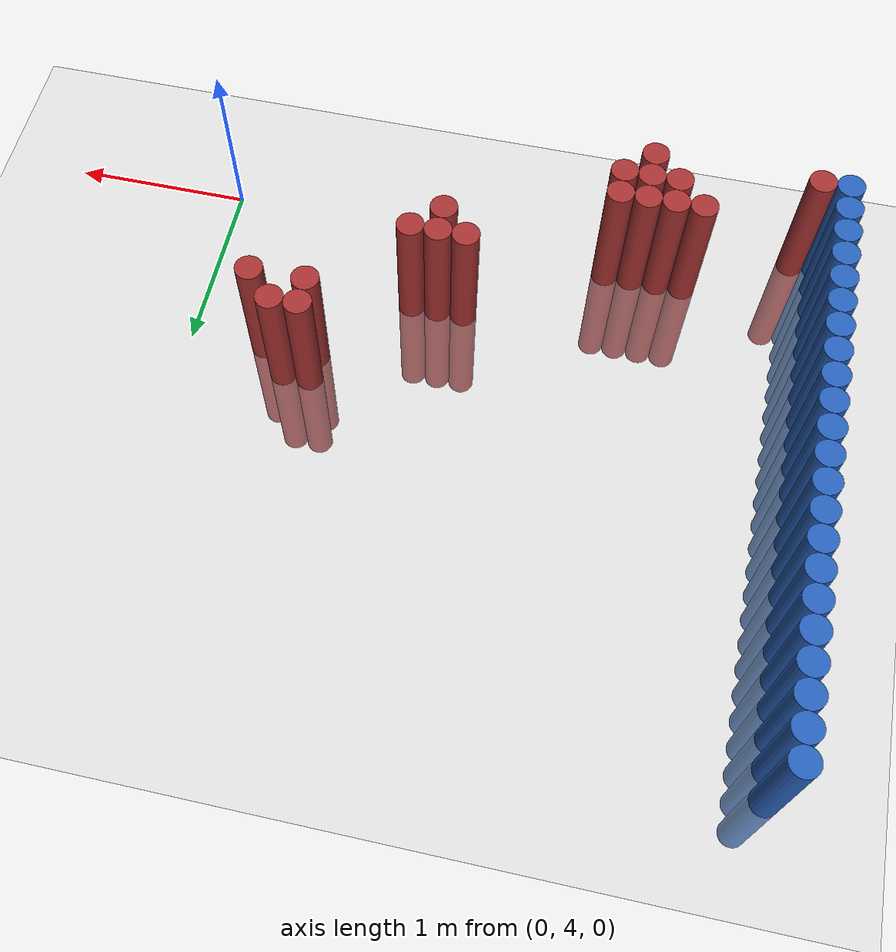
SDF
<sdf version="1.6">
 <world name="default">
  <model name="ground_plane">
   <static>1</static>
   <link name="link">
    <collision name="collision">
     <geometry><plane><normal>0 0 1</normal><size>100 100</size></plane></geometry>
     <surface><friction><ode><mu>100</mu><mu2>50</mu2></ode></friction></surface>
    </collision>
    <visual name="visual">
     <cast_shadows>0</cast_shadows>
     <geometry><plane><normal>0 0 1</normal><size>100 100</size></plane></geometry>
     <material>
      <script><uri>file://media/materials/scripts/gazebo.material</uri><name>Gazebo/Grey</name></script>
     </material>
    </visual>
   </link>
  </model>
  <model name="unit_cylinder_165">
   <static>1</static>
   <pose>-3.425000 3.775000 0.000000 0.000000 0.000000 0.000000</pose>
   <link name="link">
    <inertial>
     <mass>1</mass>
     <inertia><ixx>0.145833</ixx><ixy>0</ixy><ixz>0</ixz><iyy>0.145833</iyy><iyz>0</iyz><izz>0.125</izz></inertia>
    </inertial>
    <collision name="collision">
     <geometry><cylinder><radius>0.075000</radius><length>1.5</length></cylinder></geometry>
    </collision>
    <visual name="visual">
     <geometry><cylinder><radius>0.075000</radius><length>1.5</length></cylinder></geometry>
     <material>
      <ambient>0.152000 0.379000 0.720000 1</ambient>
      <diffuse>0.152000 0.379000 0.720000 1</diffuse>
     </material>
     <material>
      <script><name>Gazebo/Grey</name><uri>file://media/materials/scripts/gazebo.material</uri></script>
     </material>
    </visual>
   </link>
  </model>
  <model name="unit_cylinder_167">
   <static>1</static>
   <pose>-3.425000 3.925000 0.000000 0.000000 0.000000 0.000000</pose>
   <link name="link">
    <inertial>
     <mass>1</mass>
     <inertia><ixx>0.145833</ixx><ixy>0</ixy><ixz>0</ixz><iyy>0.145833</iyy><iyz>0</iyz><izz>0.125</izz></inertia>
    </inertial>
    <collision name="collision">
     <geometry><cylinder><radius>0.075000</radius><length>1.5</length></cylinder></geometry>
    </collision>
    <visual name="visual">
     <geometry><cylinder><radius>0.075000</radius><length>1.5</length></cylinder></geometry>
     <material>
      <ambient>0.152000 0.379000 0.720000 1</ambient>
      <diffuse>0.152000 0.379000 0.720000 1</diffuse>
     </material>
     <material>
      <script><name>Gazebo/Grey</name><uri>file://media/materials/scripts/gazebo.material</uri></script>
     </material>
    </visual>
   </link>
  </model>
  <model name="unit_cylinder_169">
   <static>1</static>
   <pose>-3.425000 4.075000 0.000000 0.000000 0.000000 0.000000</pose>
   <link name="link">
    <inertial>
     <mass>1</mass>
     <inertia><ixx>0.145833</ixx><ixy>0</ixy><ixz>0</ixz><iyy>0.145833</iyy><iyz>0</iyz><izz>0.125</izz></inertia>
    </inertial>
    <collision name="collision">
     <geometry><cylinder><radius>0.075000</radius><length>1.5</length></cylinder></geometry>
    </collision>
    <visual name="visual">
     <geometry><cylinder><radius>0.075000</radius><length>1.5</length></cylinder></geometry>
     <material>
      <ambient>0.152000 0.379000 0.720000 1</ambient>
      <diffuse>0.152000 0.379000 0.720000 1</diffuse>
     </material>
     <material>
      <script><name>Gazebo/Grey</name><uri>file://media/materials/scripts/gazebo.material</uri></script>
     </material>
    </visual>
   </link>
  </model>
  <model name="unit_cylinder_171">
   <static>1</static>
   <pose>-3.425000 4.225000 0.000000 0.000000 0.000000 0.000000</pose>
   <link name="link">
    <inertial>
     <mass>1</mass>
     <inertia><ixx>0.145833</ixx><ixy>0</ixy><ixz>0</ixz><iyy>0.145833</iyy><iyz>0</iyz><izz>0.125</izz></inertia>
    </inertial>
    <collision name="collision">
     <geometry><cylinder><radius>0.075000</radius><length>1.5</length></cylinder></geometry>
    </collision>
    <visual name="visual">
     <geometry><cylinder><radius>0.075000</radius><length>1.5</length></cylinder></geometry>
     <material>
      <ambient>0.152000 0.379000 0.720000 1</ambient>
      <diffuse>0.152000 0.379000 0.720000 1</diffuse>
     </material>
     <material>
      <script><name>Gazebo/Grey</name><uri>file://media/materials/scripts/gazebo.material</uri></script>
     </material>
    </visual>
   </link>
  </model>
  <model name="unit_cylinder_173">
   <static>1</static>
   <pose>-3.425000 4.375000 0.000000 0.000000 0.000000 0.000000</pose>
   <link name="link">
    <inertial>
     <mass>1</mass>
     <inertia><ixx>0.145833</ixx><ixy>0</ixy><ixz>0</ixz><iyy>0.145833</iyy><iyz>0</iyz><izz>0.125</izz></inertia>
    </inertial>
    <collision name="collision">
     <geometry><cylinder><radius>0.075000</radius><length>1.5</length></cylinder></geometry>
    </collision>
    <visual name="visual">
     <geometry><cylinder><radius>0.075000</radius><length>1.5</length></cylinder></geometry>
     <material>
      <ambient>0.152000 0.379000 0.720000 1</ambient>
      <diffuse>0.152000 0.379000 0.720000 1</diffuse>
     </material>
     <material>
      <script><name>Gazebo/Grey</name><uri>file://media/materials/scripts/gazebo.material</uri></script>
     </material>
    </visual>
   </link>
  </model>
  <model name="unit_cylinder_175">
   <static>1</static>
   <pose>-3.425000 4.525000 0.000000 0.000000 0.000000 0.000000</pose>
   <link name="link">
    <inertial>
     <mass>1</mass>
     <inertia><ixx>0.145833</ixx><ixy>0</ixy><ixz>0</ixz><iyy>0.145833</iyy><iyz>0</iyz><izz>0.125</izz></inertia>
    </inertial>
    <collision name="collision">
     <geometry><cylinder><radius>0.075000</radius><length>1.5</length></cylinder></geometry>
    </collision>
    <visual name="visual">
     <geometry><cylinder><radius>0.075000</radius><length>1.5</length></cylinder></geometry>
     <material>
      <ambient>0.152000 0.379000 0.720000 1</ambient>
      <diffuse>0.152000 0.379000 0.720000 1</diffuse>
     </material>
     <material>
      <script><name>Gazebo/Grey</name><uri>file://media/materials/scripts/gazebo.material</uri></script>
     </material>
    </visual>
   </link>
  </model>
  <model name="unit_cylinder_177">
   <static>1</static>
   <pose>-3.425000 4.675000 0.000000 0.000000 0.000000 0.000000</pose>
   <link name="link">
    <inertial>
     <mass>1</mass>
     <inertia><ixx>0.145833</ixx><ixy>0</ixy><ixz>0</ixz><iyy>0.145833</iyy><iyz>0</iyz><izz>0.125</izz></inertia>
    </inertial>
    <collision name="collision">
     <geometry><cylinder><radius>0.075000</radius><length>1.5</length></cylinder></geometry>
    </collision>
    <visual name="visual">
     <geometry><cylinder><radius>0.075000</radius><length>1.5</length></cylinder></geometry>
     <material>
      <ambient>0.152000 0.379000 0.720000 1</ambient>
      <diffuse>0.152000 0.379000 0.720000 1</diffuse>
     </material>
     <material>
      <script><name>Gazebo/Grey</name><uri>file://media/materials/scripts/gazebo.material</uri></script>
     </material>
    </visual>
   </link>
  </model>
  <model name="unit_cylinder_179">
   <static>1</static>
   <pose>-3.425000 4.825000 0.000000 0.000000 0.000000 0.000000</pose>
   <link name="link">
    <inertial>
     <mass>1</mass>
     <inertia><ixx>0.145833</ixx><ixy>0</ixy><ixz>0</ixz><iyy>0.145833</iyy><iyz>0</iyz><izz>0.125</izz></inertia>
    </inertial>
    <collision name="collision">
     <geometry><cylinder><radius>0.075000</radius><length>1.5</length></cylinder></geometry>
    </collision>
    <visual name="visual">
     <geometry><cylinder><radius>0.075000</radius><length>1.5</length></cylinder></geometry>
     <material>
      <ambient>0.152000 0.379000 0.720000 1</ambient>
      <diffuse>0.152000 0.379000 0.720000 1</diffuse>
     </material>
     <material>
      <script><name>Gazebo/Grey</name><uri>file://media/materials/scripts/gazebo.material</uri></script>
     </material>
    </visual>
   </link>
  </model>
  <model name="unit_cylinder_181">
   <static>1</static>
   <pose>-3.425000 4.975000 0.000000 0.000000 0.000000 0.000000</pose>
   <link name="link">
    <inertial>
     <mass>1</mass>
     <inertia><ixx>0.145833</ixx><ixy>0</ixy><ixz>0</ixz><iyy>0.145833</iyy><iyz>0</iyz><izz>0.125</izz></inertia>
    </inertial>
    <collision name="collision">
     <geometry><cylinder><radius>0.075000</radius><length>1.5</length></cylinder></geometry>
    </collision>
    <visual name="visual">
     <geometry><cylinder><radius>0.075000</radius><length>1.5</length></cylinder></geometry>
     <material>
      <ambient>0.152000 0.379000 0.720000 1</ambient>
      <diffuse>0.152000 0.379000 0.720000 1</diffuse>
     </material>
     <material>
      <script><name>Gazebo/Grey</name><uri>file://media/materials/scripts/gazebo.material</uri></script>
     </material>
    </visual>
   </link>
  </model>
  <model name="unit_cylinder_183">
   <static>1</static>
   <pose>-3.425000 5.125000 0.000000 0.000000 0.000000 0.000000</pose>
   <link name="link">
    <inertial>
     <mass>1</mass>
     <inertia><ixx>0.145833</ixx><ixy>0</ixy><ixz>0</ixz><iyy>0.145833</iyy><iyz>0</iyz><izz>0.125</izz></inertia>
    </inertial>
    <collision name="collision">
     <geometry><cylinder><radius>0.075000</radius><length>1.5</length></cylinder></geometry>
    </collision>
    <visual name="visual">
     <geometry><cylinder><radius>0.075000</radius><length>1.5</length></cylinder></geometry>
     <material>
      <ambient>0.152000 0.379000 0.720000 1</ambient>
      <diffuse>0.152000 0.379000 0.720000 1</diffuse>
     </material>
     <material>
      <script><name>Gazebo/Grey</name><uri>file://media/materials/scripts/gazebo.material</uri></script>
     </material>
    </visual>
   </link>
  </model>
  <model name="unit_cylinder_185">
   <static>1</static>
   <pose>-3.425000 5.275000 0.000000 0.000000 0.000000 0.000000</pose>
   <link name="link">
    <inertial>
     <mass>1</mass>
     <inertia><ixx>0.145833</ixx><ixy>0</ixy><ixz>0</ixz><iyy>0.145833</iyy><iyz>0</iyz><izz>0.125</izz></inertia>
    </inertial>
    <collision name="collision">
     <geometry><cylinder><radius>0.075000</radius><length>1.5</length></cylinder></geometry>
    </collision>
    <visual name="visual">
     <geometry><cylinder><radius>0.075000</radius><length>1.5</length></cylinder></geometry>
     <material>
      <ambient>0.152000 0.379000 0.720000 1</ambient>
      <diffuse>0.152000 0.379000 0.720000 1</diffuse>
     </material>
     <material>
      <script><name>Gazebo/Grey</name><uri>file://media/materials/scripts/gazebo.material</uri></script>
     </material>
    </visual>
   </link>
  </model>
  <model name="unit_cylinder_187">
   <static>1</static>
   <pose>-3.425000 5.425000 0.000000 0.000000 0.000000 0.000000</pose>
   <link name="link">
    <inertial>
     <mass>1</mass>
     <inertia><ixx>0.145833</ixx><ixy>0</ixy><ixz>0</ixz><iyy>0.145833</iyy><iyz>0</iyz><izz>0.125</izz></inertia>
    </inertial>
    <collision name="collision">
     <geometry><cylinder><radius>0.075000</radius><length>1.5</length></cylinder></geometry>
    </collision>
    <visual name="visual">
     <geometry><cylinder><radius>0.075000</radius><length>1.5</length></cylinder></geometry>
     <material>
      <ambient>0.152000 0.379000 0.720000 1</ambient>
      <diffuse>0.152000 0.379000 0.720000 1</diffuse>
     </material>
     <material>
      <script><name>Gazebo/Grey</name><uri>file://media/materials/scripts/gazebo.material</uri></script>
     </material>
    </visual>
   </link>
  </model>
  <model name="unit_cylinder_189">
   <static>1</static>
   <pose>-3.425000 5.575000 0.000000 0.000000 0.000000 0.000000</pose>
   <link name="link">
    <inertial>
     <mass>1</mass>
     <inertia><ixx>0.145833</ixx><ixy>0</ixy><ixz>0</ixz><iyy>0.145833</iyy><iyz>0</iyz><izz>0.125</izz></inertia>
    </inertial>
    <collision name="collision">
     <geometry><cylinder><radius>0.075000</radius><length>1.5</length></cylinder></geometry>
    </collision>
    <visual name="visual">
     <geometry><cylinder><radius>0.075000</radius><length>1.5</length></cylinder></geometry>
     <material>
      <ambient>0.152000 0.379000 0.720000 1</ambient>
      <diffuse>0.152000 0.379000 0.720000 1</diffuse>
     </material>
     <material>
      <script><name>Gazebo/Grey</name><uri>file://media/materials/scripts/gazebo.material</uri></script>
     </material>
    </visual>
   </link>
  </model>
  <model name="unit_cylinder_191">
   <static>1</static>
   <pose>-3.425000 5.725000 0.000000 0.000000 0.000000 0.000000</pose>
   <link name="link">
    <inertial>
     <mass>1</mass>
     <inertia><ixx>0.145833</ixx><ixy>0</ixy><ixz>0</ixz><iyy>0.145833</iyy><iyz>0</iyz><izz>0.125</izz></inertia>
    </inertial>
    <collision name="collision">
     <geometry><cylinder><radius>0.075000</radius><length>1.5</length></cylinder></geometry>
    </collision>
    <visual name="visual">
     <geometry><cylinder><radius>0.075000</radius><length>1.5</length></cylinder></geometry>
     <material>
      <ambient>0.152000 0.379000 0.720000 1</ambient>
      <diffuse>0.152000 0.379000 0.720000 1</diffuse>
     </material>
     <material>
      <script><name>Gazebo/Grey</name><uri>file://media/materials/scripts/gazebo.material</uri></script>
     </material>
    </visual>
   </link>
  </model>
  <model name="unit_cylinder_193">
   <static>1</static>
   <pose>-3.425000 5.875000 0.000000 0.000000 0.000000 0.000000</pose>
   <link name="link">
    <inertial>
     <mass>1</mass>
     <inertia><ixx>0.145833</ixx><ixy>0</ixy><ixz>0</ixz><iyy>0.145833</iyy><iyz>0</iyz><izz>0.125</izz></inertia>
    </inertial>
    <collision name="collision">
     <geometry><cylinder><radius>0.075000</radius><length>1.5</length></cylinder></geometry>
    </collision>
    <visual name="visual">
     <geometry><cylinder><radius>0.075000</radius><length>1.5</length></cylinder></geometry>
     <material>
      <ambient>0.152000 0.379000 0.720000 1</ambient>
      <diffuse>0.152000 0.379000 0.720000 1</diffuse>
     </material>
     <material>
      <script><name>Gazebo/Grey</name><uri>file://media/materials/scripts/gazebo.material</uri></script>
     </material>
    </visual>
   </link>
  </model>
  <model name="unit_cylinder_195">
   <static>1</static>
   <pose>-3.425000 6.025000 0.000000 0.000000 0.000000 0.000000</pose>
   <link name="link">
    <inertial>
     <mass>1</mass>
     <inertia><ixx>0.145833</ixx><ixy>0</ixy><ixz>0</ixz><iyy>0.145833</iyy><iyz>0</iyz><izz>0.125</izz></inertia>
    </inertial>
    <collision name="collision">
     <geometry><cylinder><radius>0.075000</radius><length>1.5</length></cylinder></geometry>
    </collision>
    <visual name="visual">
     <geometry><cylinder><radius>0.075000</radius><length>1.5</length></cylinder></geometry>
     <material>
      <ambient>0.152000 0.379000 0.720000 1</ambient>
      <diffuse>0.152000 0.379000 0.720000 1</diffuse>
     </material>
     <material>
      <script><name>Gazebo/Grey</name><uri>file://media/materials/scripts/gazebo.material</uri></script>
     </material>
    </visual>
   </link>
  </model>
  <model name="unit_cylinder_197">
   <static>1</static>
   <pose>-3.425000 6.175000 0.000000 0.000000 0.000000 0.000000</pose>
   <link name="link">
    <inertial>
     <mass>1</mass>
     <inertia><ixx>0.145833</ixx><ixy>0</ixy><ixz>0</ixz><iyy>0.145833</iyy><iyz>0</iyz><izz>0.125</izz></inertia>
    </inertial>
    <collision name="collision">
     <geometry><cylinder><radius>0.075000</radius><length>1.5</length></cylinder></geometry>
    </collision>
    <visual name="visual">
     <geometry><cylinder><radius>0.075000</radius><length>1.5</length></cylinder></geometry>
     <material>
      <ambient>0.152000 0.379000 0.720000 1</ambient>
      <diffuse>0.152000 0.379000 0.720000 1</diffuse>
     </material>
     <material>
      <script><name>Gazebo/Grey</name><uri>file://media/materials/scripts/gazebo.material</uri></script>
     </material>
    </visual>
   </link>
  </model>
  <model name="unit_cylinder_199">
   <static>1</static>
   <pose>-3.425000 6.325000 0.000000 0.000000 0.000000 0.000000</pose>
   <link name="link">
    <inertial>
     <mass>1</mass>
     <inertia><ixx>0.145833</ixx><ixy>0</ixy><ixz>0</ixz><iyy>0.145833</iyy><iyz>0</iyz><izz>0.125</izz></inertia>
    </inertial>
    <collision name="collision">
     <geometry><cylinder><radius>0.075000</radius><length>1.5</length></cylinder></geometry>
    </collision>
    <visual name="visual">
     <geometry><cylinder><radius>0.075000</radius><length>1.5</length></cylinder></geometry>
     <material>
      <ambient>0.152000 0.379000 0.720000 1</ambient>
      <diffuse>0.152000 0.379000 0.720000 1</diffuse>
     </material>
     <material>
      <script><name>Gazebo/Grey</name><uri>file://media/materials/scripts/gazebo.material</uri></script>
     </material>
    </visual>
   </link>
  </model>
  <model name="unit_cylinder_201">
   <static>1</static>
   <pose>-3.425000 6.475000 0.000000 0.000000 0.000000 0.000000</pose>
   <link name="link">
    <inertial>
     <mass>1</mass>
     <inertia><ixx>0.145833</ixx><ixy>0</ixy><ixz>0</ixz><iyy>0.145833</iyy><iyz>0</iyz><izz>0.125</izz></inertia>
    </inertial>
    <collision name="collision">
     <geometry><cylinder><radius>0.075000</radius><length>1.5</length></cylinder></geometry>
    </collision>
    <visual name="visual">
     <geometry><cylinder><radius>0.075000</radius><length>1.5</length></cylinder></geometry>
     <material>
      <ambient>0.152000 0.379000 0.720000 1</ambient>
      <diffuse>0.152000 0.379000 0.720000 1</diffuse>
     </material>
     <material>
      <script><name>Gazebo/Grey</name><uri>file://media/materials/scripts/gazebo.material</uri></script>
     </material>
    </visual>
   </link>
  </model>
  <model name="unit_cylinder_203">
   <static>1</static>
   <pose>-3.425000 6.625000 0.000000 0.000000 0.000000 0.000000</pose>
   <link name="link">
    <inertial>
     <mass>1</mass>
     <inertia><ixx>0.145833</ixx><ixy>0</ixy><ixz>0</ixz><iyy>0.145833</iyy><iyz>0</iyz><izz>0.125</izz></inertia>
    </inertial>
    <collision name="collision">
     <geometry><cylinder><radius>0.075000</radius><length>1.5</length></cylinder></geometry>
    </collision>
    <visual name="visual">
     <geometry><cylinder><radius>0.075000</radius><length>1.5</length></cylinder></geometry>
     <material>
      <ambient>0.152000 0.379000 0.720000 1</ambient>
      <diffuse>0.152000 0.379000 0.720000 1</diffuse>
     </material>
     <material>
      <script><name>Gazebo/Grey</name><uri>file://media/materials/scripts/gazebo.material</uri></script>
     </material>
    </visual>
   </link>
  </model>
  <model name="unit_cylinder_205">
   <static>1</static>
   <pose>-3.425000 6.775000 0.000000 0.000000 0.000000 0.000000</pose>
   <link name="link">
    <inertial>
     <mass>1</mass>
     <inertia><ixx>0.145833</ixx><ixy>0</ixy><ixz>0</ixz><iyy>0.145833</iyy><iyz>0</iyz><izz>0.125</izz></inertia>
    </inertial>
    <collision name="collision">
     <geometry><cylinder><radius>0.075000</radius><length>1.5</length></cylinder></geometry>
    </collision>
    <visual name="visual">
     <geometry><cylinder><radius>0.075000</radius><length>1.5</length></cylinder></geometry>
     <material>
      <ambient>0.152000 0.379000 0.720000 1</ambient>
      <diffuse>0.152000 0.379000 0.720000 1</diffuse>
     </material>
     <material>
      <script><name>Gazebo/Grey</name><uri>file://media/materials/scripts/gazebo.material</uri></script>
     </material>
    </visual>
   </link>
  </model>
  <model name="unit_cylinder_207">
   <static>1</static>
   <pose>-3.425000 6.925000 0.000000 0.000000 0.000000 0.000000</pose>
   <link name="link">
    <inertial>
     <mass>1</mass>
     <inertia><ixx>0.145833</ixx><ixy>0</ixy><ixz>0</ixz><iyy>0.145833</iyy><iyz>0</iyz><izz>0.125</izz></inertia>
    </inertial>
    <collision name="collision">
     <geometry><cylinder><radius>0.075000</radius><length>1.5</length></cylinder></geometry>
    </collision>
    <visual name="visual">
     <geometry><cylinder><radius>0.075000</radius><length>1.5</length></cylinder></geometry>
     <material>
      <ambient>0.152000 0.379000 0.720000 1</ambient>
      <diffuse>0.152000 0.379000 0.720000 1</diffuse>
     </material>
     <material>
      <script><name>Gazebo/Grey</name><uri>file://media/materials/scripts/gazebo.material</uri></script>
     </material>
    </visual>
   </link>
  </model>
  <model name="unit_cylinder_246">
   <static>1</static>
   <pose>-3.425000 3.775000 0.000000 0.000000 0.000000 0.000000</pose>
   <link name="link">
    <inertial>
     <mass>1</mass>
     <inertia><ixx>0.145833</ixx><ixy>0</ixy><ixz>0</ixz><iyy>0.145833</iyy><iyz>0</iyz><izz>0.125</izz></inertia>
    </inertial>
    <collision name="collision">
     <geometry><cylinder><radius>0.075000</radius><length>1.5</length></cylinder></geometry>
    </collision>
    <visual name="visual">
     <geometry><cylinder><radius>0.075000</radius><length>1.5</length></cylinder></geometry>
     <material>
      <ambient>0.152000 0.379000 0.720000 1</ambient>
      <diffuse>0.152000 0.379000 0.720000 1</diffuse>
     </material>
     <material>
      <script><name>Gazebo/Grey</name><uri>file://media/materials/scripts/gazebo.material</uri></script>
     </material>
    </visual>
   </link>
  </model>
  <model name="unit_cylinder_247">
   <static>1</static>
   <pose>-3.425000 3.925000 0.000000 0.000000 0.000000 0.000000</pose>
   <link name="link">
    <inertial>
     <mass>1</mass>
     <inertia><ixx>0.145833</ixx><ixy>0</ixy><ixz>0</ixz><iyy>0.145833</iyy><iyz>0</iyz><izz>0.125</izz></inertia>
    </inertial>
    <collision name="collision">
     <geometry><cylinder><radius>0.075000</radius><length>1.5</length></cylinder></geometry>
    </collision>
    <visual name="visual">
     <geometry><cylinder><radius>0.075000</radius><length>1.5</length></cylinder></geometry>
     <material>
      <ambient>0.152000 0.379000 0.720000 1</ambient>
      <diffuse>0.152000 0.379000 0.720000 1</diffuse>
     </material>
     <material>
      <script><name>Gazebo/Grey</name><uri>file://media/materials/scripts/gazebo.material</uri></script>
     </material>
    </visual>
   </link>
  </model>
  <model name="unit_cylinder_248">
   <static>1</static>
   <pose>-3.425000 4.075000 0.000000 0.000000 0.000000 0.000000</pose>
   <link name="link">
    <inertial>
     <mass>1</mass>
     <inertia><ixx>0.145833</ixx><ixy>0</ixy><ixz>0</ixz><iyy>0.145833</iyy><iyz>0</iyz><izz>0.125</izz></inertia>
    </inertial>
    <collision name="collision">
     <geometry><cylinder><radius>0.075000</radius><length>1.5</length></cylinder></geometry>
    </collision>
    <visual name="visual">
     <geometry><cylinder><radius>0.075000</radius><length>1.5</length></cylinder></geometry>
     <material>
      <ambient>0.152000 0.379000 0.720000 1</ambient>
      <diffuse>0.152000 0.379000 0.720000 1</diffuse>
     </material>
     <material>
      <script><name>Gazebo/Grey</name><uri>file://media/materials/scripts/gazebo.material</uri></script>
     </material>
    </visual>
   </link>
  </model>
  <model name="unit_cylinder_249">
   <static>1</static>
   <pose>-3.425000 4.225000 0.000000 0.000000 0.000000 0.000000</pose>
   <link name="link">
    <inertial>
     <mass>1</mass>
     <inertia><ixx>0.145833</ixx><ixy>0</ixy><ixz>0</ixz><iyy>0.145833</iyy><iyz>0</iyz><izz>0.125</izz></inertia>
    </inertial>
    <collision name="collision">
     <geometry><cylinder><radius>0.075000</radius><length>1.5</length></cylinder></geometry>
    </collision>
    <visual name="visual">
     <geometry><cylinder><radius>0.075000</radius><length>1.5</length></cylinder></geometry>
     <material>
      <ambient>0.152000 0.379000 0.720000 1</ambient>
      <diffuse>0.152000 0.379000 0.720000 1</diffuse>
     </material>
     <material>
      <script><name>Gazebo/Grey</name><uri>file://media/materials/scripts/gazebo.material</uri></script>
     </material>
    </visual>
   </link>
  </model>
  <model name="unit_cylinder_250">
   <static>1</static>
   <pose>-3.425000 4.375000 0.000000 0.000000 0.000000 0.000000</pose>
   <link name="link">
    <inertial>
     <mass>1</mass>
     <inertia><ixx>0.145833</ixx><ixy>0</ixy><ixz>0</ixz><iyy>0.145833</iyy><iyz>0</iyz><izz>0.125</izz></inertia>
    </inertial>
    <collision name="collision">
     <geometry><cylinder><radius>0.075000</radius><length>1.5</length></cylinder></geometry>
    </collision>
    <visual name="visual">
     <geometry><cylinder><radius>0.075000</radius><length>1.5</length></cylinder></geometry>
     <material>
      <ambient>0.152000 0.379000 0.720000 1</ambient>
      <diffuse>0.152000 0.379000 0.720000 1</diffuse>
     </material>
     <material>
      <script><name>Gazebo/Grey</name><uri>file://media/materials/scripts/gazebo.material</uri></script>
     </material>
    </visual>
   </link>
  </model>
  <model name="unit_cylinder_251">
   <static>1</static>
   <pose>-3.425000 4.525000 0.000000 0.000000 0.000000 0.000000</pose>
   <link name="link">
    <inertial>
     <mass>1</mass>
     <inertia><ixx>0.145833</ixx><ixy>0</ixy><ixz>0</ixz><iyy>0.145833</iyy><iyz>0</iyz><izz>0.125</izz></inertia>
    </inertial>
    <collision name="collision">
     <geometry><cylinder><radius>0.075000</radius><length>1.5</length></cylinder></geometry>
    </collision>
    <visual name="visual">
     <geometry><cylinder><radius>0.075000</radius><length>1.5</length></cylinder></geometry>
     <material>
      <ambient>0.152000 0.379000 0.720000 1</ambient>
      <diffuse>0.152000 0.379000 0.720000 1</diffuse>
     </material>
     <material>
      <script><name>Gazebo/Grey</name><uri>file://media/materials/scripts/gazebo.material</uri></script>
     </material>
    </visual>
   </link>
  </model>
  <model name="unit_cylinder_252">
   <static>1</static>
   <pose>-3.425000 4.675000 0.000000 0.000000 0.000000 0.000000</pose>
   <link name="link">
    <inertial>
     <mass>1</mass>
     <inertia><ixx>0.145833</ixx><ixy>0</ixy><ixz>0</ixz><iyy>0.145833</iyy><iyz>0</iyz><izz>0.125</izz></inertia>
    </inertial>
    <collision name="collision">
     <geometry><cylinder><radius>0.075000</radius><length>1.5</length></cylinder></geometry>
    </collision>
    <visual name="visual">
     <geometry><cylinder><radius>0.075000</radius><length>1.5</length></cylinder></geometry>
     <material>
      <ambient>0.152000 0.379000 0.720000 1</ambient>
      <diffuse>0.152000 0.379000 0.720000 1</diffuse>
     </material>
     <material>
      <script><name>Gazebo/Grey</name><uri>file://media/materials/scripts/gazebo.material</uri></script>
     </material>
    </visual>
   </link>
  </model>
  <model name="unit_cylinder_253">
   <static>1</static>
   <pose>-3.425000 4.825000 0.000000 0.000000 0.000000 0.000000</pose>
   <link name="link">
    <inertial>
     <mass>1</mass>
     <inertia><ixx>0.145833</ixx><ixy>0</ixy><ixz>0</ixz><iyy>0.145833</iyy><iyz>0</iyz><izz>0.125</izz></inertia>
    </inertial>
    <collision name="collision">
     <geometry><cylinder><radius>0.075000</radius><length>1.5</length></cylinder></geometry>
    </collision>
    <visual name="visual">
     <geometry><cylinder><radius>0.075000</radius><length>1.5</length></cylinder></geometry>
     <material>
      <ambient>0.152000 0.379000 0.720000 1</ambient>
      <diffuse>0.152000 0.379000 0.720000 1</diffuse>
     </material>
     <material>
      <script><name>Gazebo/Grey</name><uri>file://media/materials/scripts/gazebo.material</uri></script>
     </material>
    </visual>
   </link>
  </model>
  <model name="unit_cylinder_254">
   <static>1</static>
   <pose>-3.425000 4.975000 0.000000 0.000000 0.000000 0.000000</pose>
   <link name="link">
    <inertial>
     <mass>1</mass>
     <inertia><ixx>0.145833</ixx><ixy>0</ixy><ixz>0</ixz><iyy>0.145833</iyy><iyz>0</iyz><izz>0.125</izz></inertia>
    </inertial>
    <collision name="collision">
     <geometry><cylinder><radius>0.075000</radius><length>1.5</length></cylinder></geometry>
    </collision>
    <visual name="visual">
     <geometry><cylinder><radius>0.075000</radius><length>1.5</length></cylinder></geometry>
     <material>
      <ambient>0.152000 0.379000 0.720000 1</ambient>
      <diffuse>0.152000 0.379000 0.720000 1</diffuse>
     </material>
     <material>
      <script><name>Gazebo/Grey</name><uri>file://media/materials/scripts/gazebo.material</uri></script>
     </material>
    </visual>
   </link>
  </model>
  <model name="unit_cylinder_255">
   <static>1</static>
   <pose>-3.425000 5.125000 0.000000 0.000000 0.000000 0.000000</pose>
   <link name="link">
    <inertial>
     <mass>1</mass>
     <inertia><ixx>0.145833</ixx><ixy>0</ixy><ixz>0</ixz><iyy>0.145833</iyy><iyz>0</iyz><izz>0.125</izz></inertia>
    </inertial>
    <collision name="collision">
     <geometry><cylinder><radius>0.075000</radius><length>1.5</length></cylinder></geometry>
    </collision>
    <visual name="visual">
     <geometry><cylinder><radius>0.075000</radius><length>1.5</length></cylinder></geometry>
     <material>
      <ambient>0.152000 0.379000 0.720000 1</ambient>
      <diffuse>0.152000 0.379000 0.720000 1</diffuse>
     </material>
     <material>
      <script><name>Gazebo/Grey</name><uri>file://media/materials/scripts/gazebo.material</uri></script>
     </material>
    </visual>
   </link>
  </model>
  <model name="unit_cylinder_256">
   <static>1</static>
   <pose>-3.425000 5.275000 0.000000 0.000000 0.000000 0.000000</pose>
   <link name="link">
    <inertial>
     <mass>1</mass>
     <inertia><ixx>0.145833</ixx><ixy>0</ixy><ixz>0</ixz><iyy>0.145833</iyy><iyz>0</iyz><izz>0.125</izz></inertia>
    </inertial>
    <collision name="collision">
     <geometry><cylinder><radius>0.075000</radius><length>1.5</length></cylinder></geometry>
    </collision>
    <visual name="visual">
     <geometry><cylinder><radius>0.075000</radius><length>1.5</length></cylinder></geometry>
     <material>
      <ambient>0.152000 0.379000 0.720000 1</ambient>
      <diffuse>0.152000 0.379000 0.720000 1</diffuse>
     </material>
     <material>
      <script><name>Gazebo/Grey</name><uri>file://media/materials/scripts/gazebo.material</uri></script>
     </material>
    </visual>
   </link>
  </model>
  <model name="unit_cylinder_257">
   <static>1</static>
   <pose>-3.425000 5.425000 0.000000 0.000000 0.000000 0.000000</pose>
   <link name="link">
    <inertial>
     <mass>1</mass>
     <inertia><ixx>0.145833</ixx><ixy>0</ixy><ixz>0</ixz><iyy>0.145833</iyy><iyz>0</iyz><izz>0.125</izz></inertia>
    </inertial>
    <collision name="collision">
     <geometry><cylinder><radius>0.075000</radius><length>1.5</length></cylinder></geometry>
    </collision>
    <visual name="visual">
     <geometry><cylinder><radius>0.075000</radius><length>1.5</length></cylinder></geometry>
     <material>
      <ambient>0.152000 0.379000 0.720000 1</ambient>
      <diffuse>0.152000 0.379000 0.720000 1</diffuse>
     </material>
     <material>
      <script><name>Gazebo/Grey</name><uri>file://media/materials/scripts/gazebo.material</uri></script>
     </material>
    </visual>
   </link>
  </model>
  <model name="unit_cylinder_275">
   <static>1</static>
   <pose>-3.275000 3.775000 0.000000 0.000000 0.000000 0.000000</pose>
   <link name="link">
    <inertial>
     <mass>1</mass>
     <inertia><ixx>0.145833</ixx><ixy>0</ixy><ixz>0</ixz><iyy>0.145833</iyy><iyz>0</iyz><izz>0.125</izz></inertia>
    </inertial>
    <collision name="collision">
     <geometry><cylinder><radius>0.075000</radius><length>1.5</length></cylinder></geometry>
    </collision>
    <visual name="visual">
     <geometry><cylinder><radius>0.075000</radius><length>1.5</length></cylinder></geometry>
     <material>
      <ambient>0.648000 0.192000 0.192000 1</ambient>
      <diffuse>0.648000 0.192000 0.192000 1</diffuse>
     </material>
     <material>
      <script><name>Gazebo/Grey</name><uri>file://media/materials/scripts/gazebo.material</uri></script>
     </material>
    </visual>
   </link>
  </model>
  <model name="unit_cylinder_305">
   <static>1</static>
   <pose>-2.675000 4.075000 0.000000 0.000000 0.000000 0.000000</pose>
   <link name="link">
    <inertial>
     <mass>1</mass>
     <inertia><ixx>0.145833</ixx><ixy>0</ixy><ixz>0</ixz><iyy>0.145833</iyy><iyz>0</iyz><izz>0.125</izz></inertia>
    </inertial>
    <collision name="collision">
     <geometry><cylinder><radius>0.075000</radius><length>1.5</length></cylinder></geometry>
    </collision>
    <visual name="visual">
     <geometry><cylinder><radius>0.075000</radius><length>1.5</length></cylinder></geometry>
     <material>
      <ambient>0.648000 0.192000 0.192000 1</ambient>
      <diffuse>0.648000 0.192000 0.192000 1</diffuse>
     </material>
     <material>
      <script><name>Gazebo/Grey</name><uri>file://media/materials/scripts/gazebo.material</uri></script>
     </material>
    </visual>
   </link>
  </model>
  <model name="unit_cylinder_318">
   <static>1</static>
   <pose>-2.525000 3.925000 0.000000 0.000000 0.000000 0.000000</pose>
   <link name="link">
    <inertial>
     <mass>1</mass>
     <inertia><ixx>0.145833</ixx><ixy>0</ixy><ixz>0</ixz><iyy>0.145833</iyy><iyz>0</iyz><izz>0.125</izz></inertia>
    </inertial>
    <collision name="collision">
     <geometry><cylinder><radius>0.075000</radius><length>1.5</length></cylinder></geometry>
    </collision>
    <visual name="visual">
     <geometry><cylinder><radius>0.075000</radius><length>1.5</length></cylinder></geometry>
     <material>
      <ambient>0.648000 0.192000 0.192000 1</ambient>
      <diffuse>0.648000 0.192000 0.192000 1</diffuse>
     </material>
     <material>
      <script><name>Gazebo/Grey</name><uri>file://media/materials/scripts/gazebo.material</uri></script>
     </material>
    </visual>
   </link>
  </model>
  <model name="unit_cylinder_319">
   <static>1</static>
   <pose>-2.525000 4.075000 0.000000 0.000000 0.000000 0.000000</pose>
   <link name="link">
    <inertial>
     <mass>1</mass>
     <inertia><ixx>0.145833</ixx><ixy>0</ixy><ixz>0</ixz><iyy>0.145833</iyy><iyz>0</iyz><izz>0.125</izz></inertia>
    </inertial>
    <collision name="collision">
     <geometry><cylinder><radius>0.075000</radius><length>1.5</length></cylinder></geometry>
    </collision>
    <visual name="visual">
     <geometry><cylinder><radius>0.075000</radius><length>1.5</length></cylinder></geometry>
     <material>
      <ambient>0.648000 0.192000 0.192000 1</ambient>
      <diffuse>0.648000 0.192000 0.192000 1</diffuse>
     </material>
     <material>
      <script><name>Gazebo/Grey</name><uri>file://media/materials/scripts/gazebo.material</uri></script>
     </material>
    </visual>
   </link>
  </model>
  <model name="unit_cylinder_328">
   <static>1</static>
   <pose>-2.375000 3.775000 0.000000 0.000000 0.000000 0.000000</pose>
   <link name="link">
    <inertial>
     <mass>1</mass>
     <inertia><ixx>0.145833</ixx><ixy>0</ixy><ixz>0</ixz><iyy>0.145833</iyy><iyz>0</iyz><izz>0.125</izz></inertia>
    </inertial>
    <collision name="collision">
     <geometry><cylinder><radius>0.075000</radius><length>1.5</length></cylinder></geometry>
    </collision>
    <visual name="visual">
     <geometry><cylinder><radius>0.075000</radius><length>1.5</length></cylinder></geometry>
     <material>
      <ambient>0.648000 0.192000 0.192000 1</ambient>
      <diffuse>0.648000 0.192000 0.192000 1</diffuse>
     </material>
     <material>
      <script><name>Gazebo/Grey</name><uri>file://media/materials/scripts/gazebo.material</uri></script>
     </material>
    </visual>
   </link>
  </model>
  <model name="unit_cylinder_329">
   <static>1</static>
   <pose>-2.375000 3.925000 0.000000 0.000000 0.000000 0.000000</pose>
   <link name="link">
    <inertial>
     <mass>1</mass>
     <inertia><ixx>0.145833</ixx><ixy>0</ixy><ixz>0</ixz><iyy>0.145833</iyy><iyz>0</iyz><izz>0.125</izz></inertia>
    </inertial>
    <collision name="collision">
     <geometry><cylinder><radius>0.075000</radius><length>1.5</length></cylinder></geometry>
    </collision>
    <visual name="visual">
     <geometry><cylinder><radius>0.075000</radius><length>1.5</length></cylinder></geometry>
     <material>
      <ambient>0.648000 0.192000 0.192000 1</ambient>
      <diffuse>0.648000 0.192000 0.192000 1</diffuse>
     </material>
     <material>
      <script><name>Gazebo/Grey</name><uri>file://media/materials/scripts/gazebo.material</uri></script>
     </material>
    </visual>
   </link>
  </model>
  <model name="unit_cylinder_330">
   <static>1</static>
   <pose>-2.375000 4.075000 0.000000 0.000000 0.000000 0.000000</pose>
   <link name="link">
    <inertial>
     <mass>1</mass>
     <inertia><ixx>0.145833</ixx><ixy>0</ixy><ixz>0</ixz><iyy>0.145833</iyy><iyz>0</iyz><izz>0.125</izz></inertia>
    </inertial>
    <collision name="collision">
     <geometry><cylinder><radius>0.075000</radius><length>1.5</length></cylinder></geometry>
    </collision>
    <visual name="visual">
     <geometry><cylinder><radius>0.075000</radius><length>1.5</length></cylinder></geometry>
     <material>
      <ambient>0.648000 0.192000 0.192000 1</ambient>
      <diffuse>0.648000 0.192000 0.192000 1</diffuse>
     </material>
     <material>
      <script><name>Gazebo/Grey</name><uri>file://media/materials/scripts/gazebo.material</uri></script>
     </material>
    </visual>
   </link>
  </model>
  <model name="unit_cylinder_340">
   <static>1</static>
   <pose>-2.225000 3.925000 0.000000 0.000000 0.000000 0.000000</pose>
   <link name="link">
    <inertial>
     <mass>1</mass>
     <inertia><ixx>0.145833</ixx><ixy>0</ixy><ixz>0</ixz><iyy>0.145833</iyy><iyz>0</iyz><izz>0.125</izz></inertia>
    </inertial>
    <collision name="collision">
     <geometry><cylinder><radius>0.075000</radius><length>1.5</length></cylinder></geometry>
    </collision>
    <visual name="visual">
     <geometry><cylinder><radius>0.075000</radius><length>1.5</length></cylinder></geometry>
     <material>
      <ambient>0.648000 0.192000 0.192000 1</ambient>
      <diffuse>0.648000 0.192000 0.192000 1</diffuse>
     </material>
     <material>
      <script><name>Gazebo/Grey</name><uri>file://media/materials/scripts/gazebo.material</uri></script>
     </material>
    </visual>
   </link>
  </model>
  <model name="unit_cylinder_341">
   <static>1</static>
   <pose>-2.225000 4.075000 0.000000 0.000000 0.000000 0.000000</pose>
   <link name="link">
    <inertial>
     <mass>1</mass>
     <inertia><ixx>0.145833</ixx><ixy>0</ixy><ixz>0</ixz><iyy>0.145833</iyy><iyz>0</iyz><izz>0.125</izz></inertia>
    </inertial>
    <collision name="collision">
     <geometry><cylinder><radius>0.075000</radius><length>1.5</length></cylinder></geometry>
    </collision>
    <visual name="visual">
     <geometry><cylinder><radius>0.075000</radius><length>1.5</length></cylinder></geometry>
     <material>
      <ambient>0.648000 0.192000 0.192000 1</ambient>
      <diffuse>0.648000 0.192000 0.192000 1</diffuse>
     </material>
     <material>
      <script><name>Gazebo/Grey</name><uri>file://media/materials/scripts/gazebo.material</uri></script>
     </material>
    </visual>
   </link>
  </model>
  <model name="unit_cylinder_358">
   <static>1</static>
   <pose>-1.475000 4.525000 0.000000 0.000000 0.000000 0.000000</pose>
   <link name="link">
    <inertial>
     <mass>1</mass>
     <inertia><ixx>0.145833</ixx><ixy>0</ixy><ixz>0</ixz><iyy>0.145833</iyy><iyz>0</iyz><izz>0.125</izz></inertia>
    </inertial>
    <collision name="collision">
     <geometry><cylinder><radius>0.075000</radius><length>1.5</length></cylinder></geometry>
    </collision>
    <visual name="visual">
     <geometry><cylinder><radius>0.075000</radius><length>1.5</length></cylinder></geometry>
     <material>
      <ambient>0.648000 0.192000 0.192000 1</ambient>
      <diffuse>0.648000 0.192000 0.192000 1</diffuse>
     </material>
     <material>
      <script><name>Gazebo/Grey</name><uri>file://media/materials/scripts/gazebo.material</uri></script>
     </material>
    </visual>
   </link>
  </model>
  <model name="unit_cylinder_359">
   <static>1</static>
   <pose>-1.325000 4.375000 0.000000 0.000000 0.000000 0.000000</pose>
   <link name="link">
    <inertial>
     <mass>1</mass>
     <inertia><ixx>0.145833</ixx><ixy>0</ixy><ixz>0</ixz><iyy>0.145833</iyy><iyz>0</iyz><izz>0.125</izz></inertia>
    </inertial>
    <collision name="collision">
     <geometry><cylinder><radius>0.075000</radius><length>1.5</length></cylinder></geometry>
    </collision>
    <visual name="visual">
     <geometry><cylinder><radius>0.075000</radius><length>1.5</length></cylinder></geometry>
     <material>
      <ambient>0.648000 0.192000 0.192000 1</ambient>
      <diffuse>0.648000 0.192000 0.192000 1</diffuse>
     </material>
     <material>
      <script><name>Gazebo/Grey</name><uri>file://media/materials/scripts/gazebo.material</uri></script>
     </material>
    </visual>
   </link>
  </model>
  <model name="unit_cylinder_360">
   <static>1</static>
   <pose>-1.325000 4.525000 0.000000 0.000000 0.000000 0.000000</pose>
   <link name="link">
    <inertial>
     <mass>1</mass>
     <inertia><ixx>0.145833</ixx><ixy>0</ixy><ixz>0</ixz><iyy>0.145833</iyy><iyz>0</iyz><izz>0.125</izz></inertia>
    </inertial>
    <collision name="collision">
     <geometry><cylinder><radius>0.075000</radius><length>1.5</length></cylinder></geometry>
    </collision>
    <visual name="visual">
     <geometry><cylinder><radius>0.075000</radius><length>1.5</length></cylinder></geometry>
     <material>
      <ambient>0.648000 0.192000 0.192000 1</ambient>
      <diffuse>0.648000 0.192000 0.192000 1</diffuse>
     </material>
     <material>
      <script><name>Gazebo/Grey</name><uri>file://media/materials/scripts/gazebo.material</uri></script>
     </material>
    </visual>
   </link>
  </model>
  <model name="unit_cylinder_364">
   <static>1</static>
   <pose>-1.175000 4.525000 0.000000 0.000000 0.000000 0.000000</pose>
   <link name="link">
    <inertial>
     <mass>1</mass>
     <inertia><ixx>0.145833</ixx><ixy>0</ixy><ixz>0</ixz><iyy>0.145833</iyy><iyz>0</iyz><izz>0.125</izz></inertia>
    </inertial>
    <collision name="collision">
     <geometry><cylinder><radius>0.075000</radius><length>1.5</length></cylinder></geometry>
    </collision>
    <visual name="visual">
     <geometry><cylinder><radius>0.075000</radius><length>1.5</length></cylinder></geometry>
     <material>
      <ambient>0.648000 0.192000 0.192000 1</ambient>
      <diffuse>0.648000 0.192000 0.192000 1</diffuse>
     </material>
     <material>
      <script><name>Gazebo/Grey</name><uri>file://media/materials/scripts/gazebo.material</uri></script>
     </material>
    </visual>
   </link>
  </model>
  <model name="unit_cylinder_371">
   <static>1</static>
   <pose>-0.725000 4.975000 0.000000 0.000000 0.000000 0.000000</pose>
   <link name="link">
    <inertial>
     <mass>1</mass>
     <inertia><ixx>0.145833</ixx><ixy>0</ixy><ixz>0</ixz><iyy>0.145833</iyy><iyz>0</iyz><izz>0.125</izz></inertia>
    </inertial>
    <collision name="collision">
     <geometry><cylinder><radius>0.075000</radius><length>1.5</length></cylinder></geometry>
    </collision>
    <visual name="visual">
     <geometry><cylinder><radius>0.075000</radius><length>1.5</length></cylinder></geometry>
     <material>
      <ambient>0.648000 0.192000 0.192000 1</ambient>
      <diffuse>0.648000 0.192000 0.192000 1</diffuse>
     </material>
     <material>
      <script><name>Gazebo/Grey</name><uri>file://media/materials/scripts/gazebo.material</uri></script>
     </material>
    </visual>
   </link>
  </model>
  <model name="unit_cylinder_372">
   <static>1</static>
   <pose>-0.725000 5.125000 0.000000 0.000000 0.000000 0.000000</pose>
   <link name="link">
    <inertial>
     <mass>1</mass>
     <inertia><ixx>0.145833</ixx><ixy>0</ixy><ixz>0</ixz><iyy>0.145833</iyy><iyz>0</iyz><izz>0.125</izz></inertia>
    </inertial>
    <collision name="collision">
     <geometry><cylinder><radius>0.075000</radius><length>1.5</length></cylinder></geometry>
    </collision>
    <visual name="visual">
     <geometry><cylinder><radius>0.075000</radius><length>1.5</length></cylinder></geometry>
     <material>
      <ambient>0.648000 0.192000 0.192000 1</ambient>
      <diffuse>0.648000 0.192000 0.192000 1</diffuse>
     </material>
     <material>
      <script><name>Gazebo/Grey</name><uri>file://media/materials/scripts/gazebo.material</uri></script>
     </material>
    </visual>
   </link>
  </model>
  <model name="unit_cylinder_377">
   <static>1</static>
   <pose>-0.575000 5.125000 0.000000 0.000000 0.000000 0.000000</pose>
   <link name="link">
    <inertial>
     <mass>1</mass>
     <inertia><ixx>0.145833</ixx><ixy>0</ixy><ixz>0</ixz><iyy>0.145833</iyy><iyz>0</iyz><izz>0.125</izz></inertia>
    </inertial>
    <collision name="collision">
     <geometry><cylinder><radius>0.075000</radius><length>1.5</length></cylinder></geometry>
    </collision>
    <visual name="visual">
     <geometry><cylinder><radius>0.075000</radius><length>1.5</length></cylinder></geometry>
     <material>
      <ambient>0.648000 0.192000 0.192000 1</ambient>
      <diffuse>0.648000 0.192000 0.192000 1</diffuse>
     </material>
     <material>
      <script><name>Gazebo/Grey</name><uri>file://media/materials/scripts/gazebo.material</uri></script>
     </material>
    </visual>
   </link>
  </model>
  <model name="unit_cylinder_389">
   <static>1</static>
   <pose>-0.425000 4.975000 0.000000 0.000000 0.000000 0.000000</pose>
   <link name="link">
    <inertial>
     <mass>1</mass>
     <inertia><ixx>0.145833</ixx><ixy>0</ixy><ixz>0</ixz><iyy>0.145833</iyy><iyz>0</iyz><izz>0.125</izz></inertia>
    </inertial>
    <collision name="collision">
     <geometry><cylinder><radius>0.075000</radius><length>1.5</length></cylinder></geometry>
    </collision>
    <visual name="visual">
     <geometry><cylinder><radius>0.075000</radius><length>1.5</length></cylinder></geometry>
     <material>
      <ambient>0.648000 0.192000 0.192000 1</ambient>
      <diffuse>0.648000 0.192000 0.192000 1</diffuse>
     </material>
     <material>
      <script><name>Gazebo/Grey</name><uri>file://media/materials/scripts/gazebo.material</uri></script>
     </material>
    </visual>
   </link>
  </model>
 </world>
</sdf>
